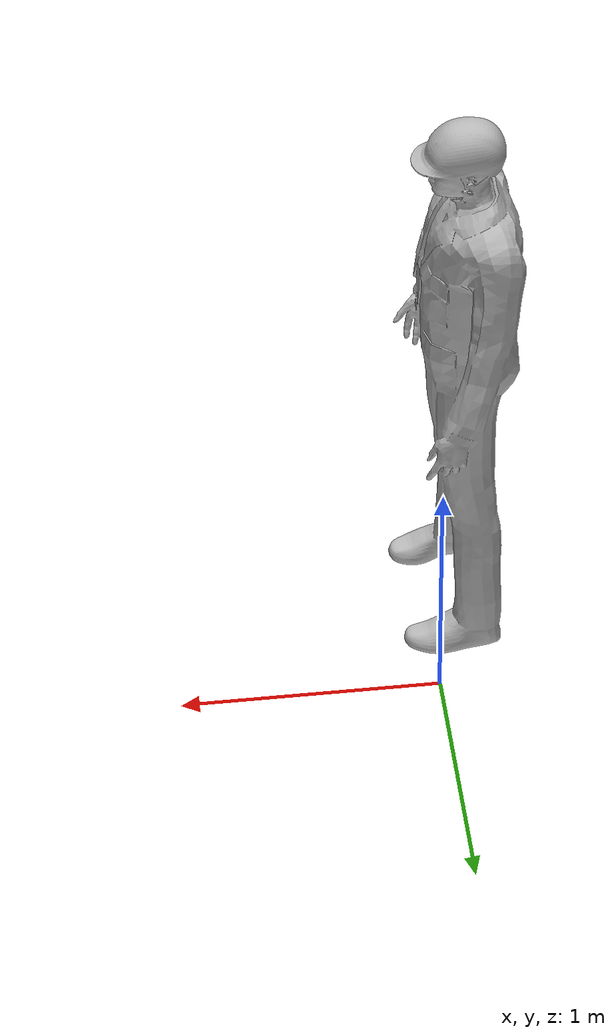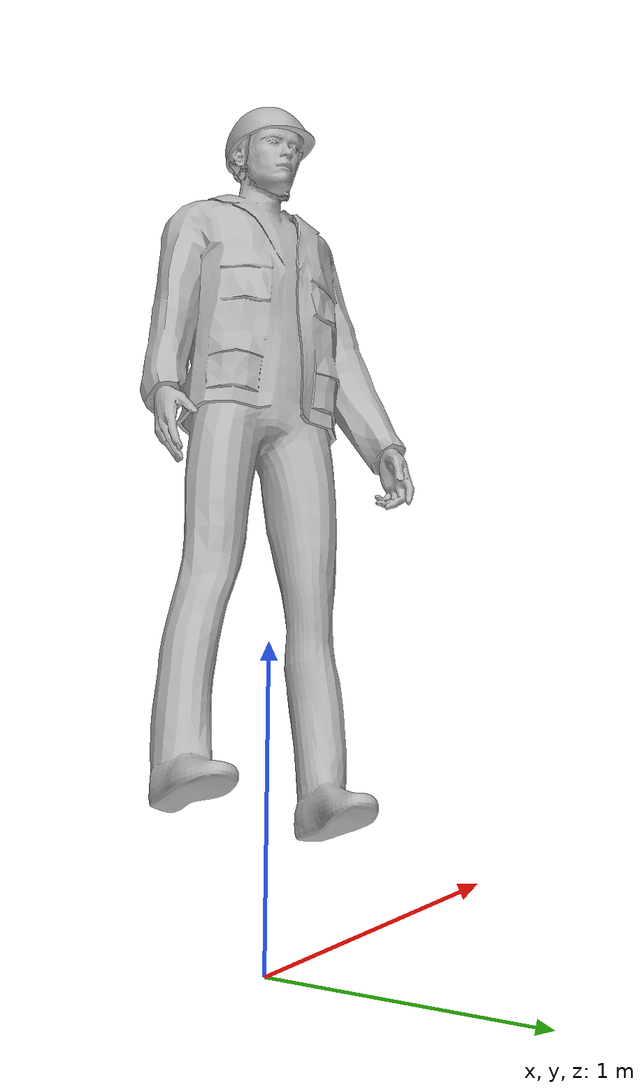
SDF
<?xml version='1.0'?>
<sdf version="1.0">
<model name="jeff_electrician">
  <pose>0 0 0.5 0 0 0</pose>
  <static>true</static>
    <link name="link">
      <inertial>
        <mass>80.0</mass>
        <inertia> <!-- inertias are tricky to compute -->
          <!-- http://gazebosim.org/tutorials?tut=inertia&cat=build_robot -->
          <ixx>-0.186819 </ixx>
          <ixy>-0.000257 </ixy>
          <ixz>-0.000008</ixz>
          <iyy>0.005504</iyy>
          <iyz>-0.003203</iyz>
          <izz>-0.183004</izz>
        </inertia>
      </inertial>
      <collision name="collision">
        <geometry>
          <mesh>
            <uri>model://jeff_electrician/jeff_electrician.dae</uri>
          </mesh>
        </geometry>
      </collision>
      <visual name="visual">
        <geometry>
          <mesh>
            <uri>model://jeff_electrician/jeff_electrician.dae</uri>
          </mesh>
        </geometry>
      </visual>
    </link>
  	<plugin name="dynamic_model_plugin" filename="libDynamicModelPlugin.so">
       <update_rate>60</update_rate>
       <initial_on>false</initial_on>
       <trajectory_file>sample_trajectory.txt</trajectory_file>
       <loop_enabled>false</loop_enabled>
       <use_segmentation>true</use_segmentation>
       <use_directional_yaw>true</use_directional_yaw>
     </plugin>
  </model>
</sdf>
